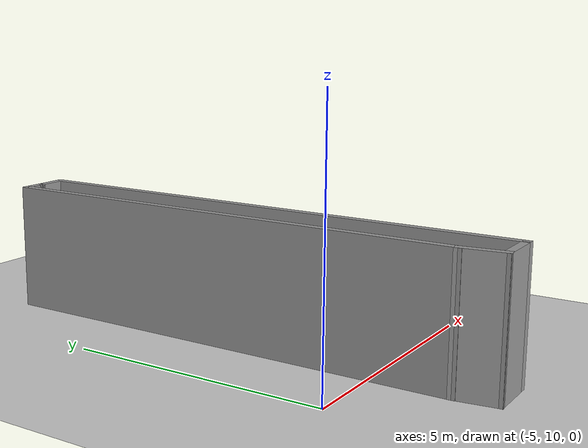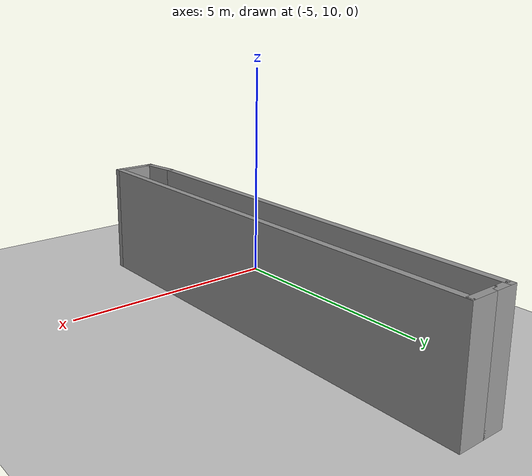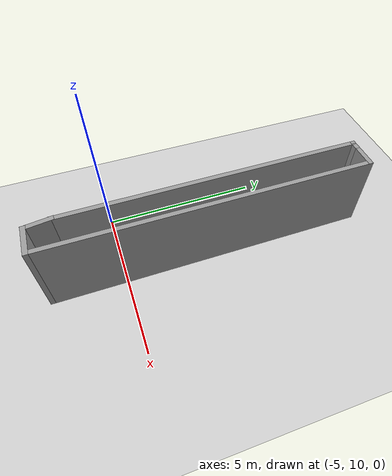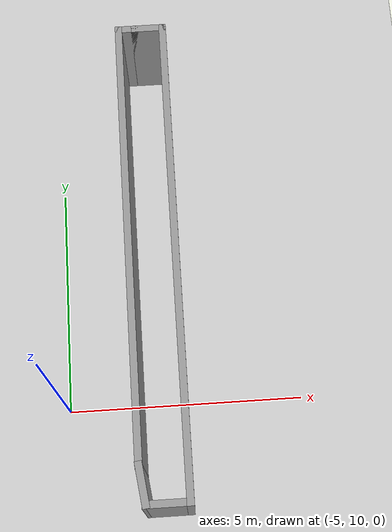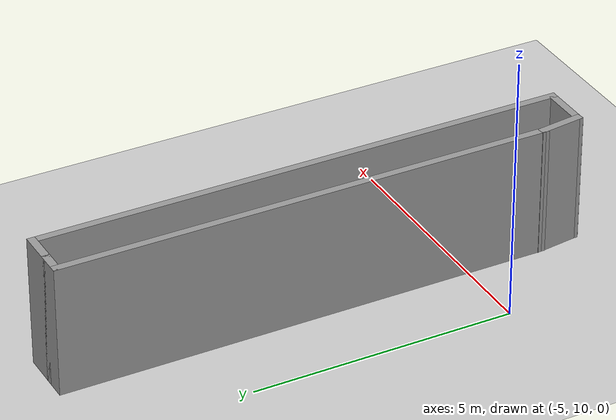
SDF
<sdf version="1.6">
 <world name="default">
  <model name="ground_plane">
   <static>1</static>
   <link name="link">
    <collision name="collision">
     <geometry><plane><normal>0 0 1</normal><size>100 100</size></plane></geometry>
     <surface><friction><ode><mu>100</mu><mu2>50</mu2></ode></friction></surface>
    </collision>
    <visual name="visual">
     <cast_shadows>0</cast_shadows>
     <geometry><plane><normal>0 0 1</normal><size>100 100</size></plane></geometry>
     <material>
      <script><uri>file://media/materials/scripts/gazebo.material</uri><name>Gazebo/Grey</name></script>
     </material>
    </visual>
   </link>
  </model>
  <model name="just_closed_walls_0">
   <pose>-3.0048 12.7826 0 0 -0 0</pose>
   <link name="Wall_0">
    <collision name="Wall_0_Collision">
     <geometry><box><size>9.5 0.15 2.5</size></box></geometry>
     <pose>0 0 1.25 0 -0 0</pose>
    </collision>
    <visual name="Wall_0_Visual">
     <pose>0 0 1.25 0 -0 0</pose>
     <geometry><box><size>9.5 0.15 2.5</size></box></geometry>
     <material>
      <script><uri>file://media/materials/scripts/gazebo.material</uri><name>Gazebo/Grey</name></script>
      <ambient>1 1 1 1</ambient>
     </material>
    </visual>
    <pose>-0.470373 0.379627 0 0 -0 1.5708</pose>
   </link>
   <link name="Wall_1">
    <collision name="Wall_1_Collision">
     <geometry><box><size>0.5 0.15 2.5</size></box></geometry>
     <pose>0 0 1.25 0 -0 0</pose>
    </collision>
    <visual name="Wall_1_Visual">
     <pose>0 0 1.25 0 -0 0</pose>
     <geometry><box><size>0.5 0.15 2.5</size></box></geometry>
     <material>
      <script><uri>file://media/materials/scripts/gazebo.material</uri><name>Gazebo/Grey</name></script>
      <ambient>1 1 1 1</ambient>
     </material>
    </visual>
    <pose>-0.295373 5.05463 0 0 -0 0</pose>
   </link>
   <link name="Wall_2">
    <collision name="Wall_2_Collision">
     <geometry><box><size>0.75 0.15 2.5</size></box></geometry>
     <pose>0 0 1.25 0 -0 0</pose>
    </collision>
    <visual name="Wall_2_Visual">
     <pose>0 0 1.25 0 -0 0</pose>
     <geometry><box><size>0.75 0.15 2.5</size></box></geometry>
     <material>
      <script><uri>file://media/materials/scripts/gazebo.material</uri><name>Gazebo/Grey</name></script>
      <ambient>1 1 1 1</ambient>
     </material>
    </visual>
    <pose>0.179627 5.05463 0 0 -0 0</pose>
   </link>
   <link name="Wall_3">
    <collision name="Wall_3_Collision">
     <geometry><box><size>10.25 0.15 2.5</size></box></geometry>
     <pose>0 0 1.25 0 -0 0</pose>
    </collision>
    <visual name="Wall_3_Visual">
     <pose>0 0 1.25 0 -0 0</pose>
     <geometry><box><size>10.25 0.15 2.5</size></box></geometry>
     <material>
      <script><uri>file://media/materials/scripts/gazebo.material</uri><name>Gazebo/Grey</name></script>
      <ambient>1 1 1 1</ambient>
     </material>
    </visual>
    <pose>0.479627 0.004627 0 0 0 -1.5708</pose>
   </link>
   <link name="Wall_4">
    <collision name="Wall_4_Collision">
     <geometry><box><size>1 0.15 2.5</size></box></geometry>
     <pose>0 0 1.25 0 -0 0</pose>
    </collision>
    <visual name="Wall_4_Visual">
     <pose>0 0 1.25 0 -0 0</pose>
     <geometry><box><size>1 0.15 2.5</size></box></geometry>
     <material>
      <script><uri>file://media/materials/scripts/gazebo.material</uri><name>Gazebo/Grey</name></script>
      <ambient>1 1 1 1</ambient>
     </material>
    </visual>
    <pose>0.054627 -5.04537 0 0 -0 3.14159</pose>
   </link>
   <link name="Wall_5">
    <collision name="Wall_5_Collision">
     <geometry><box><size>0.906637 0.15 2.5</size></box></geometry>
     <pose>0 0 1.25 0 -0 0</pose>
    </collision>
    <visual name="Wall_5_Visual">
     <pose>0 0 1.25 0 -0 0</pose>
     <geometry><box><size>0.906637 0.15 2.5</size></box></geometry>
     <material>
      <script><uri>file://media/materials/scripts/gazebo.material</uri><name>Gazebo/Grey</name></script>
      <ambient>1 1 1 1</ambient>
     </material>
    </visual>
    <pose>-0.420373 -4.67037 0 0 -0 1.70335</pose>
   </link>
   <static>1</static>
  </model>
 </world>
</sdf>
